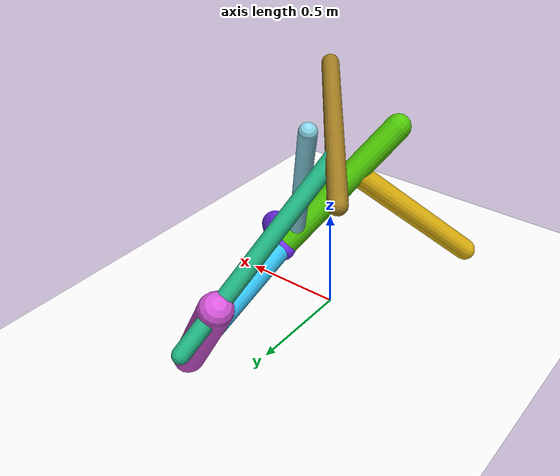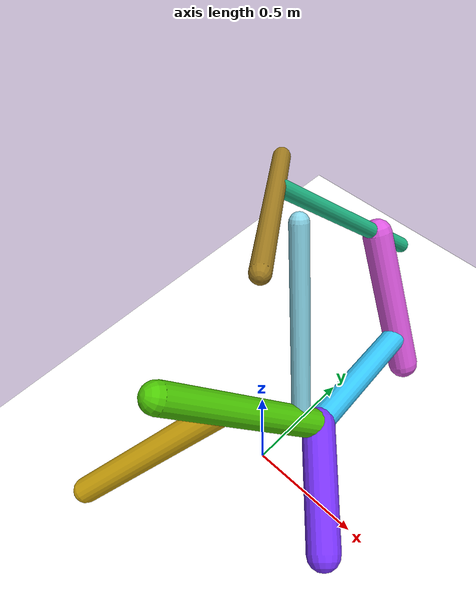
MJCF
<mujoco model="morphology">
  <option timestep="0.01"/>
  <default>
    <default class="/"/>
    <default class="0/"/>
    <default class="0/1/"/>
    <default class="0/1/2/"/>
    <default class="0/1/2/3/"/>
    <default class="0/1/2/3/4/"/>
    <default class="0/1/2/3/4/5/"/>
    <default class="0/1/2/3/4/5/6/"/>
    <default class="0/1/2/3/4/5/7/"/>
  </default>
  <asset>
    <texture name="texplane" type="2d" builtin="checker" rgb1="0.10000000000000001 0.20000000000000001 0.29999999999999999" rgb2="0.20000000000000001 0.29999999999999999 0.40000000000000002" width="300" height="300"/>
    <material name="MatPlane" class="/" texture="texplane" texrepeat="20 20" specular="1" shininess="1" reflectance="0.5"/>
  </asset>
  <worldbody>
    <light name="//unnamed_light_0" class="/" directional="true" pos="0 0 1.5" dir="0 0 -1.3" cutoff="100" exponent="1" diffuse="1 1 1" specular="0.10000000000000001 0.10000000000000001 0.10000000000000001"/>
    <geom name="ground" class="/" type="plane" size="15 15 0.5" material="MatPlane" rgba="1 1 1 1"/>
    <site name="body" class="/" size="9.9999999999999995e-07 9.9999999999999995e-07 9.9999999999999995e-07" pos="0 0 1.2394549608230592"/>
    <body pos="0 0 1.2394549608230592" name="0/">
      <freejoint name="0/"/>
      <geom name="0/geom" class="0/" type="capsule" contype="1" conaffinity="1" condim="3" size="0.03647214121056324" rgba="0.62316046877954323 0.48137556613810828 0.12364297425976611 1" friction="0.59999999999999998 0.10000000000000001 0.10000000000000001" fromto="0 0 0 -0.49329169180551491 0.63422859188518466 -0.19662059656362663"/>
      <site name="0/end0" class="0/" size="0.0050000000000000001" pos="-0.49329169180551491 0.63422859188518466 -0.19662059656362663"/>
      <site name="0/attach1" class="0/" size="9.9999999999999995e-07 9.9999999999999995e-07 9.9999999999999995e-07" pos="-0.34125606155464461 0.43875531452781391 -0.13602088078605212"/>
      <body pos="-0.34125606155464461 0.43875531452781391 -0.13602088078605212" name="0/1/">
        <joint name="0/1/joint/" class="0/" type="hinge" axis="0 1 0" limited="true" range="-53.699059147865427 53.699059147865427"/>
        <geom name="0/1/geom" class="0/1/" type="capsule" contype="1" conaffinity="1" condim="3" size="0.035345967259620525" rgba="0.12581054960879368 0.72406046469507013 0.52602116580858249 1" friction="0.59999999999999998 0.10000000000000001 0.10000000000000001" fromto="0 0 0 0.22850712387470118 0.63041008225584116 -0.61354593715840089"/>
        <site name="0/1/end1" class="0/1/" size="0.0050000000000000001" pos="0.22850712387470118 0.63041008225584116 -0.61354593715840089"/>
        <site name="0/1/attach2" class="0/1/" size="9.9999999999999995e-07 9.9999999999999995e-07 9.9999999999999995e-07" pos="0.17605867884326917 0.48571424964544851 -0.47272087309188171"/>
        <body pos="0.17605867884326917 0.48571424964544851 -0.47272087309188171" name="0/1/2/">
          <joint name="0/1/2/joint/" class="0/1/" type="hinge" axis="-5.5511151231257827e-17 0.69745653994625578 0.71662708216072668" limited="true" range="-54.76986833234038 54.76986833234038"/>
          <geom name="0/1/2/geom" class="0/1/2/" type="capsule" contype="1" conaffinity="1" condim="3" size="0.068226576431637487" rgba="0.85490065610347132 0.34275512897403915 0.86858177266368009 1" friction="0.59999999999999998 0.10000000000000001 0.10000000000000001" fromto="0 0 0 0.35660087811895536 -0.13877056939513055 -0.5307132007385974"/>
          <site name="0/1/2/end2" class="0/1/2/" size="0.0050000000000000001" pos="0.35660087811895536 -0.13877056939513055 -0.5307132007385974"/>
          <site name="0/1/2/attach3" class="0/1/2/" size="9.9999999999999995e-07 9.9999999999999995e-07 9.9999999999999995e-07" pos="0.27118337449890167 -0.10553050650972343 -0.40359013535405996"/>
          <body pos="0.27118337449890167 -0.10553050650972343 -0.40359013535405996" name="0/1/2/3/">
            <joint name="0/1/2/3/joint/" class="0/1/2/" type="hinge" axis="-5.5511151231257827e-17 -0.96747300879740861 0.25297426202775886" limited="true" range="-68.179627718976207 68.179627718976207"/>
            <geom name="0/1/2/3/geom" class="0/1/2/3/" type="capsule" contype="1" conaffinity="1" condim="3" size="0.055793075648931725" rgba="0.20718368533446418 0.77031060622814806 0.9790231058461708 1" friction="0.59999999999999998 0.10000000000000001 0.10000000000000001" fromto="0 0 0 0.077316778160228639 -0.70878382062452827 0.11638310451797018"/>
            <site name="0/1/2/3/end3" class="0/1/2/3/" size="0.0050000000000000001" pos="0.077316778160228639 -0.70878382062452827 0.11638310451797018"/>
            <site name="0/1/2/3/attach4" class="0/1/2/3/" size="9.9999999999999995e-07 9.9999999999999995e-07 9.9999999999999995e-07" pos="0.073525386613328997 -0.67402710869162741 0.1106760131314547"/>
            <body pos="0.073525386613328997 -0.67402710869162741 0.1106760131314547" name="0/1/2/3/4/">
              <joint name="0/1/2/3/4/joint/" class="0/1/2/3/" type="hinge" axis="0 0.16203131367712742 0.98678561673144805" limited="true" range="-36.828693846225271 36.828693846225271"/>
              <geom name="0/1/2/3/4/geom" class="0/1/2/3/4/" type="capsule" contype="1" conaffinity="1" condim="3" size="0.069759299293636237" rgba="0.46987628989037011 0.19571686073182359 0.98728086226264833 1" friction="0.59999999999999998 0.10000000000000001 0.10000000000000001" fromto="0 0 0 0.33624115193392412 -0.34181772515294906 -0.1705445707483968"/>
              <site name="0/1/2/3/4/end4" class="0/1/2/3/4/" size="0.0050000000000000001" pos="0.33624115193392412 -0.34181772515294906 -0.1705445707483968"/>
              <site name="0/1/2/3/4/attach5" class="0/1/2/3/4/" size="9.9999999999999995e-07 9.9999999999999995e-07 9.9999999999999995e-07" pos="0.0012541639055198394 -0.0012749642650462191 -0.00063612334089625734"/>
              <body pos="0.0012541639055198394 -0.0012749642650462191 -0.00063612334089625734" name="0/1/2/3/4/5/">
                <joint name="0/1/2/3/4/5/joint/" class="0/1/2/3/4/" type="hinge" axis="0.75063533340154398 0.59121482776762002 0.29497732739459187" limited="true" range="-45.34225045253396 45.34225045253396"/>
                <geom name="0/1/2/3/4/5/geom" class="0/1/2/3/4/5/" type="capsule" contype="1" conaffinity="1" condim="3" size="0.062402329679940853" rgba="0.29946903805724856 0.77893727257310363 0.016405477278434111 1" friction="0.59999999999999998 0.10000000000000001 0.10000000000000001" fromto="0 0 0 -0.297566206435041 -0.5208446533739215 0.50756705683409686"/>
                <site name="0/1/2/3/4/5/end5" class="0/1/2/3/4/5/" size="0.0050000000000000001" pos="-0.297566206435041 -0.5208446533739215 0.50756705683409686"/>
                <site name="0/1/2/3/4/5/attach6" class="0/1/2/3/4/5/" size="9.9999999999999995e-07 9.9999999999999995e-07 9.9999999999999995e-07" pos="-0.18679608588269336 -0.32695830540964194 0.31862334327371045"/>
                <body pos="-0.18679608588269336 -0.32695830540964194 0.31862334327371045" name="0/1/2/3/4/5/6/">
                  <joint name="0/1/2/3/4/5/6/joint/" class="0/1/2/3/4/5/" type="hinge" axis="0.92552386385254115 -0.27120832933588396 0.26429456963453113" limited="true" range="-34.62717322481997 34.62717322481997"/>
                  <geom name="0/1/2/3/4/5/6/geom" class="0/1/2/3/4/5/6/" type="capsule" contype="1" conaffinity="1" condim="3" size="0.055161147614248243" rgba="0.88019317586830192 0.69790191680196878 0.055837809323199816 1" friction="0.59999999999999998 0.10000000000000001 0.10000000000000001" fromto="0 0 0 -0.39167637298646302 -0.48004435383134314 -0.5501958114876746"/>
                  <site name="0/1/2/3/4/5/6/end6" class="0/1/2/3/4/5/6/" size="0.0050000000000000001" pos="-0.39167637298646302 -0.48004435383134314 -0.5501958114876746"/>
                </body>
                <site name="0/1/2/3/4/5/attach7" class="0/1/2/3/4/5/" size="9.9999999999999995e-07 9.9999999999999995e-07 9.9999999999999995e-07" pos="-0.038411650740564941 -0.067233786911408314 0.065519834218083189"/>
                <body pos="-0.038411650740564941 -0.067233786911408314 0.065519834218083189" name="0/1/2/3/4/5/7/">
                  <geom name="0/1/2/3/4/5/7/geom" class="0/1/2/3/4/5/7/" type="capsule" contype="1" conaffinity="1" condim="3" size="0.038346520681988627" rgba="0.53790743414682307 0.83629363548722069 0.91088669025384317 1" friction="0.59999999999999998 0.10000000000000001 0.10000000000000001" fromto="0 0 0 -0.29243310443237963 0.27327001669172013 0.70305937894929982"/>
                  <site name="0/1/2/3/4/5/7/end7" class="0/1/2/3/4/5/7/" size="0.0050000000000000001" pos="-0.29243310443237963 0.27327001669172013 0.70305937894929982"/>
                </body>
              </body>
            </body>
          </body>
        </body>
      </body>
      <camera name="0/iso" class="0/" mode="trackcom" pos="-2.2999999999999998 -2.2999999999999998 1" xyaxes="0.45000000000000001 -0.45000000000000001 0 0.29999999999999999 0.14999999999999999 0.93999999999999995"/>
    </body>
  </worldbody>
  <actuator>
    <motor name="0/1/motor" class="0/1/" ctrllimited="true" ctrlrange="-1 1" gear="72" joint="0/1/joint/"/>
    <motor name="0/1/2/motor" class="0/1/2/" ctrllimited="true" ctrlrange="-1 1" gear="73" joint="0/1/2/joint/"/>
    <motor name="0/1/2/3/motor" class="0/1/2/3/" ctrllimited="true" ctrlrange="-1 1" gear="83" joint="0/1/2/3/joint/"/>
    <motor name="0/1/2/3/4/motor" class="0/1/2/3/4/" ctrllimited="true" ctrlrange="-1 1" gear="78" joint="0/1/2/3/4/joint/"/>
    <motor name="0/1/2/3/4/5/motor" class="0/1/2/3/4/5/" ctrllimited="true" ctrlrange="-1 1" gear="91" joint="0/1/2/3/4/5/joint/"/>
    <motor name="0/1/2/3/4/5/6/motor" class="0/1/2/3/4/5/6/" ctrllimited="true" ctrlrange="-1 1" gear="82" joint="0/1/2/3/4/5/6/joint/"/>
  </actuator>
  <sensor>
    <subtreelinvel name="velocity" body="0/"/>
  </sensor>
</mujoco>
